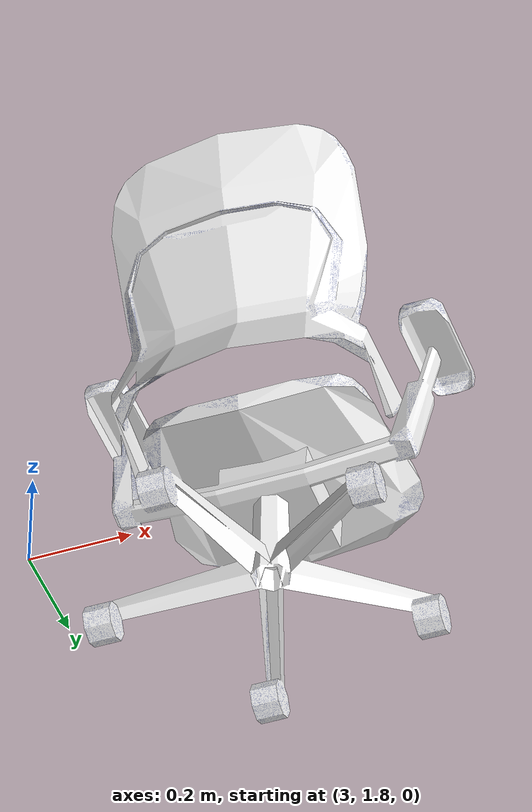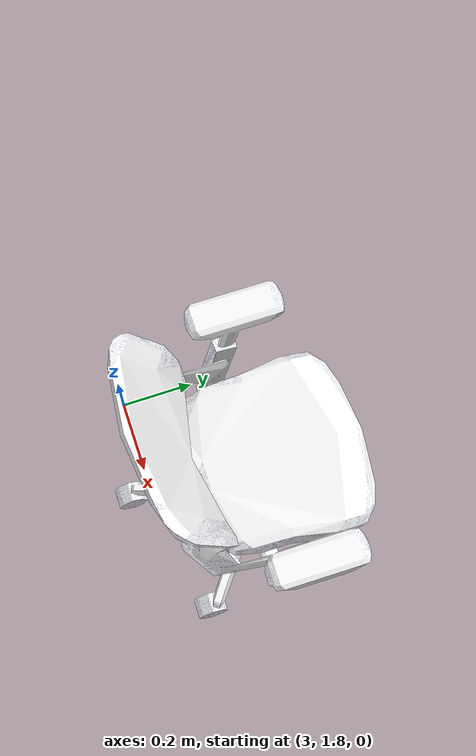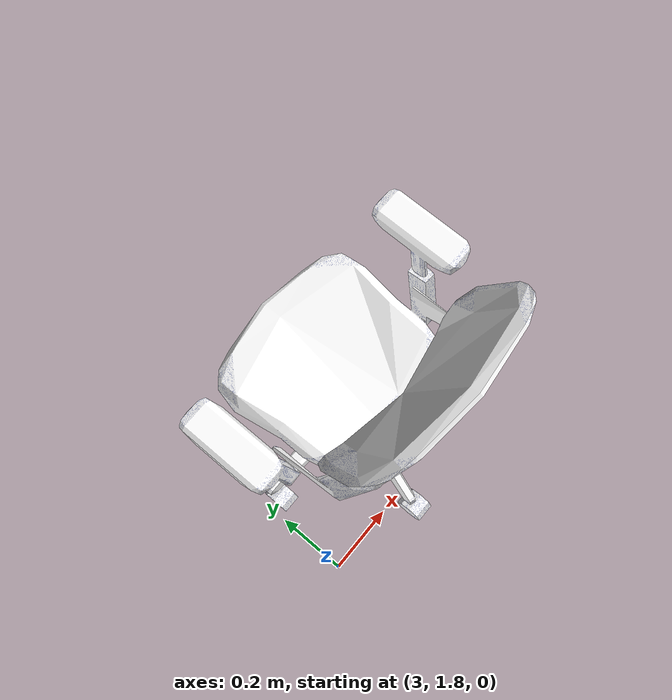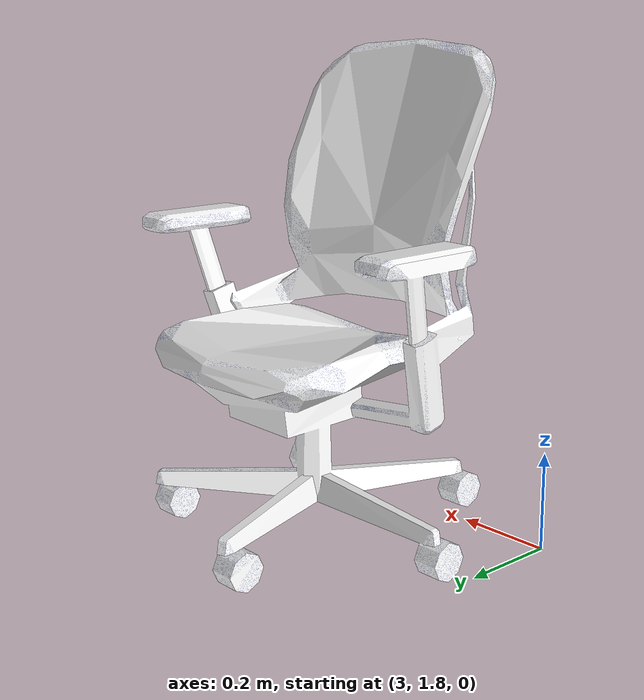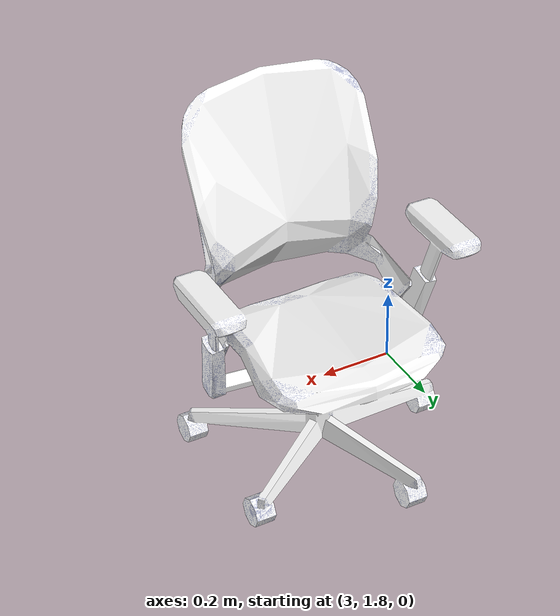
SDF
<?xml version="1.0"?>

<sdf version="1.4">
    <model name="chair1">
        <static>true</static>
        <link name="chair1_link">

            <visual name="chair1_mesh">
                <geometry>
                    <mesh>
                        <uri>model://chair1/meshes/model.dae</uri>
                    </mesh>
                </geometry>
            </visual>

            <collision name="chair1_collison">
                <pose> 3.364386 2.058545 0.499903 0 0 0</pose>
                <geometry>
                    <box>
                        <size>0.760848 0.688184 0.990690</size>
                    </box>
                </geometry>
            </collision>

        </link>
    </model>
</sdf>
